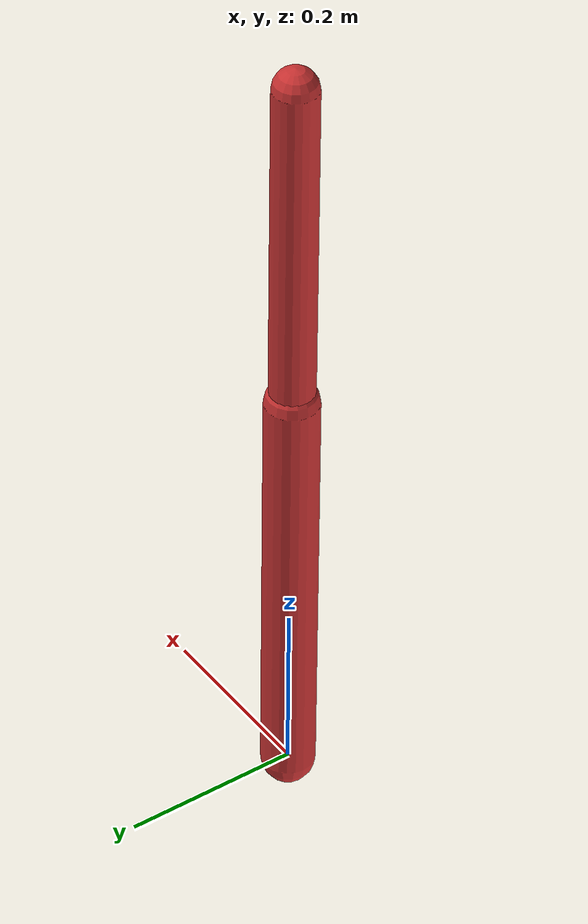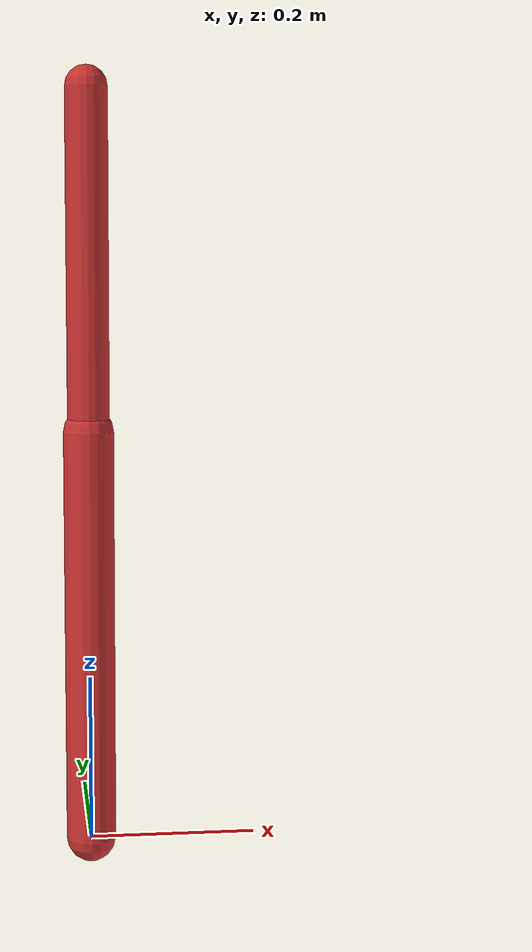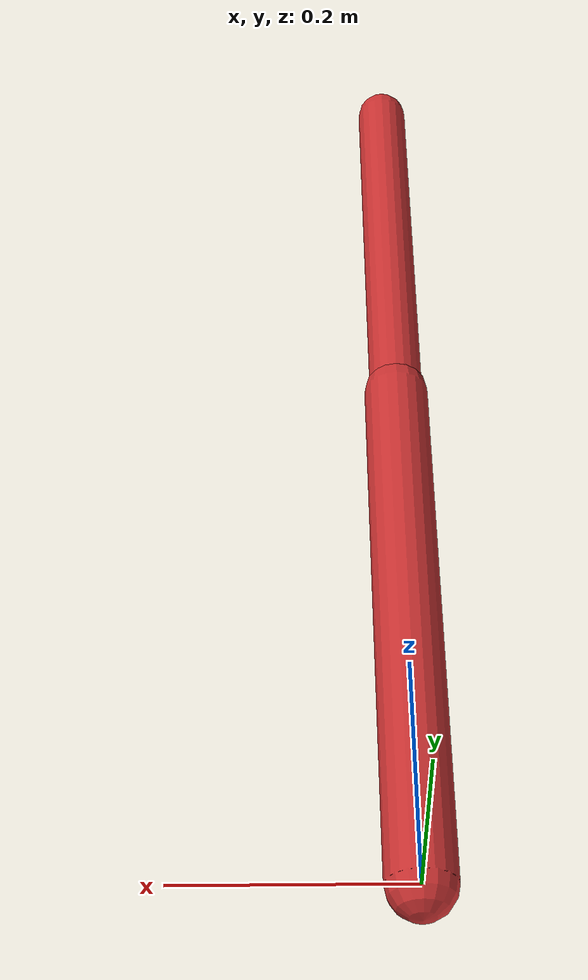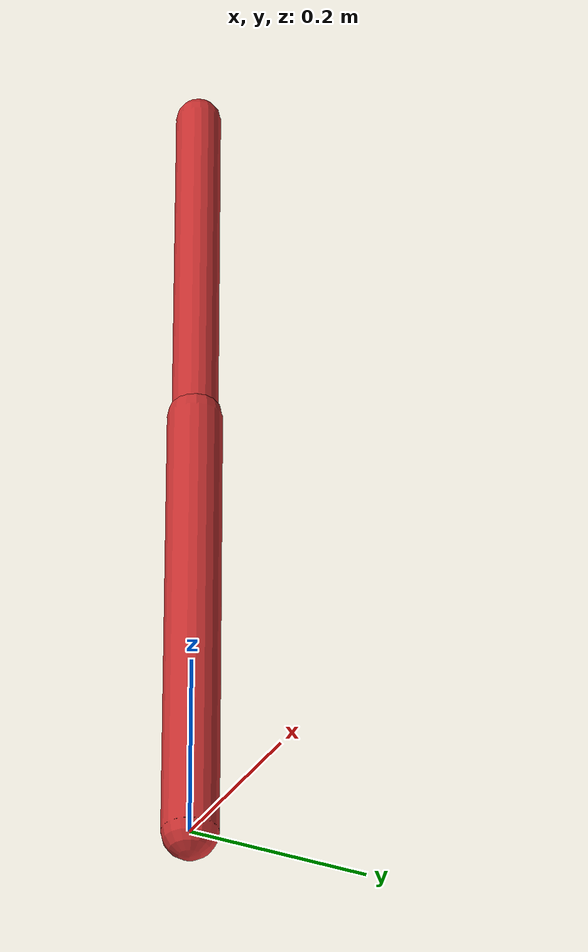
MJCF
<mujoco model="two_link_gimbal_arm">
  <compiler angle="degree" coordinate="local"/>
  <!-- smaller dt for stability with high gains -->
  <option timestep="0.001" gravity="0 0 0" integrator="RK4"/>

  <default>
    <!-- Hinges limited to ±90°, with strong damping -->
    <joint limited="true" range="-90 90" damping="5.0" armature="0.0005"/>
    <geom type="capsule" rgba="0.8 0.2 0.2 1"/>
    <site size="0.01" rgba="0.1 0.7 1 1"/>
  </default>

  <worldbody>
    <body name="base" pos="0 0 0">
      <geom type="sphere" size="0.02" rgba="0.3 0.3 0.3 1"/>

      <!-- Link 1: roll (X) then pitch (Y) -->
      <body name="link1" pos="0 0 0">
        <joint name="j1_roll"  type="hinge" axis="1 0 0" pos="0 0 0" range="-90 90" limited="true"/>
        <joint name="j1_pitch" type="hinge" axis="0 1 0" pos="0 0 0" range="-90 90" limited="true"/>

        <geom name="link1_geom" fromto="0 0 0  0 0 0.5" size="0.03" density="800"/>

        <!-- Link 2 attaches at link1 tip -->
        <body name="link2" pos="0 0 0.5">
          <joint name="j2_roll"  type="hinge" axis="1 0 0" pos="0 0 0" range="-90 90" limited="true"/>
          <joint name="j2_pitch" type="hinge" axis="0 1 0" pos="0 0 0" range="-90 90" limited="true"/>

          <geom name="link2_geom" fromto="0 0 0  0 0 0.4" size="0.025" density="800"/>
          <site name="ee" pos="0 0 0.4"/>
        </body>

        <site name="link1_tip" pos="0 0 0.5"/>
      </body>
    </body>
  </worldbody>

  <!-- Position actuators: very stiff tracking; controls are radians at runtime -->
  <actuator>
    <position name="a_j1_roll"  joint="j1_roll"  kp="4000" ctrllimited="true" ctrlrange="-1.5708 1.5708"/>
    <position name="a_j1_pitch" joint="j1_pitch" kp="4000" ctrllimited="true" ctrlrange="-1.5708 1.5708"/>
    <position name="a_j2_roll"  joint="j2_roll"  kp="4000" ctrllimited="true" ctrlrange="-1.5708 1.5708"/>
    <position name="a_j2_pitch" joint="j2_pitch" kp="4000" ctrllimited="true" ctrlrange="-1.5708 1.5708"/>
  </actuator>
</mujoco>
